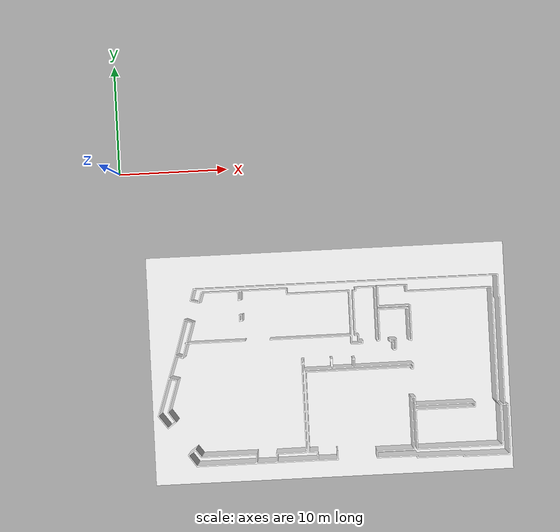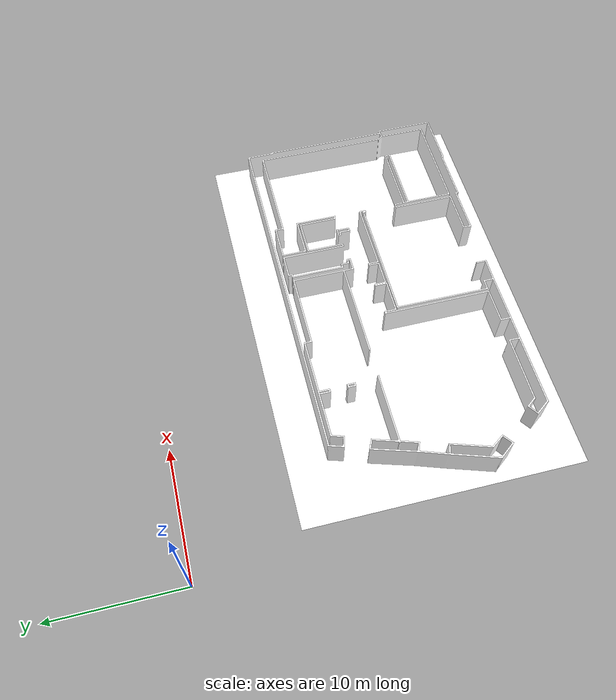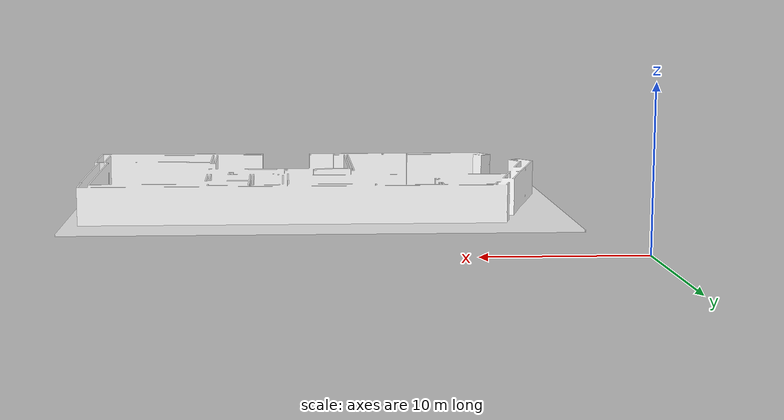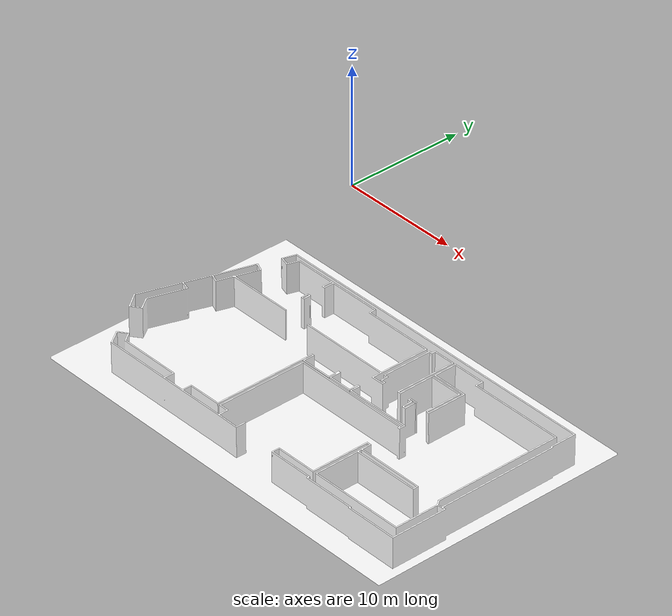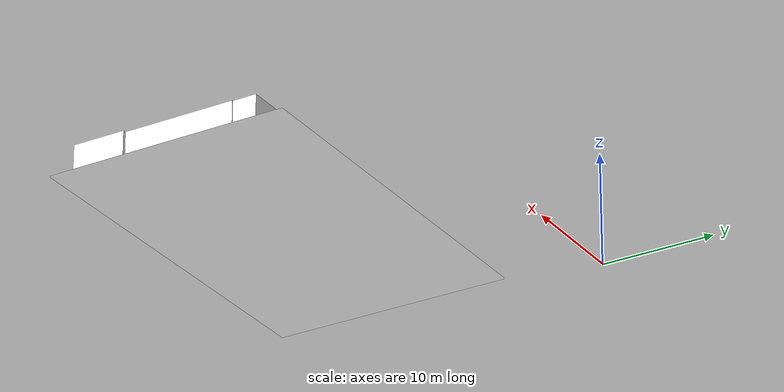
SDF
<?xml version='1.0' encoding='utf-8'?>
<sdf version="1.7">
  <model name="nayar_Planta0">
    <static>true</static>
    <link name="floor_1">
      <visual name="visual">
        <geometry>
          <mesh>
            <uri>model://nayar_Planta0/meshes/floor_1.obj</uri>
          </mesh>
        </geometry>
        <material>
          <diffuse>1.0 1.0 1.0</diffuse>
          <specular>0.1 0.1 0.1</specular>
          <pbr>
            <metal>
              <metalness>0.0</metalness>
              <albedo_map>model://nayar_Planta0/meshes/blue_linoleum.png</albedo_map>
            </metal>
          </pbr>
          <script>
            <uri>model://nayar_Planta0/meshes/</uri>
            <name>floor_1_Diffuse</name>
          </script>
        </material>
      </visual>
      <collision name="collision">
        <geometry>
          <mesh>
            <uri>model://nayar_Planta0/meshes/floor_1.obj</uri>
          </mesh>
        </geometry>
        <surface>
          <contact>
            <collide_bitmask>0x01</collide_bitmask>
          </contact>
        </surface>
      </collision>
    </link>
    <link name="wall_1">
      <visual name="wall_1">
        <geometry>
          <mesh>
            <uri>model://nayar_Planta0/meshes/wall_1.obj</uri>
          </mesh>
        </geometry>
        <transparency>0.0</transparency>
        <material>
          <diffuse>1.0 1.0 1.0</diffuse>
          <specular>0.1 0.1 0.1</specular>
          <pbr>
            <metal>
              <metalness>0.0</metalness>
              <albedo_map>model://nayar_Planta0/meshes/default.png</albedo_map>
            </metal>
          </pbr>
          <script>
            <uri>model://nayar_Planta0/meshes/</uri>
            <name>wall_1_Diffuse</name>
          </script>
        </material>
      </visual>
      <collision name="collision">
        <geometry>
          <mesh>
            <uri>model://nayar_Planta0/meshes/wall_1.obj</uri>
          </mesh>
        </geometry>
        <surface>
          <contact>
            <collide_bitmask>0x01</collide_bitmask>
          </contact>
        </surface>
      </collision>
      <pose>2.7970452641527097 -27.453932388375208 0 0 0 0</pose>
    </link>
  </model>
</sdf>
